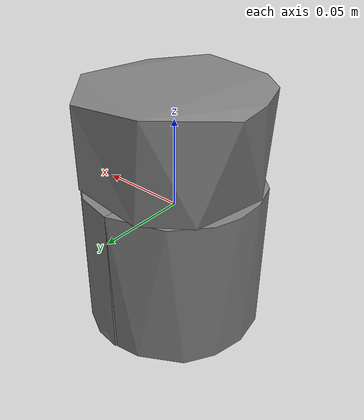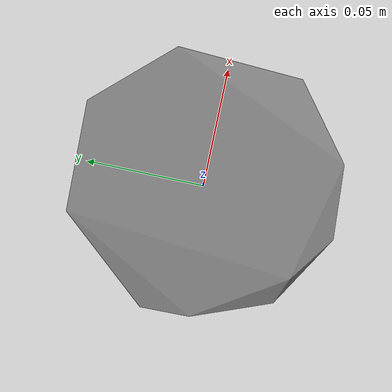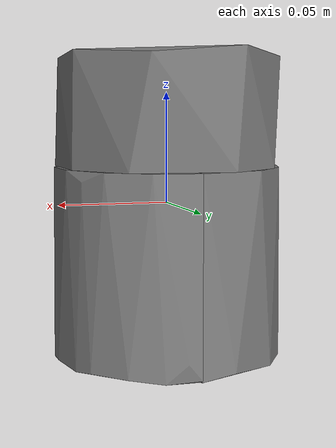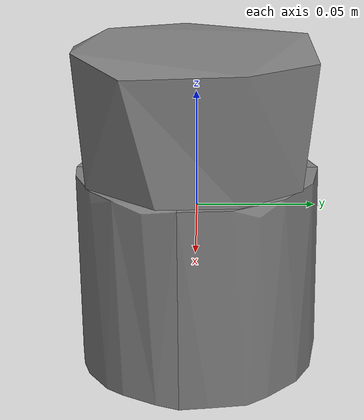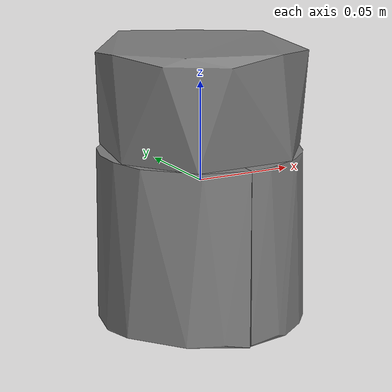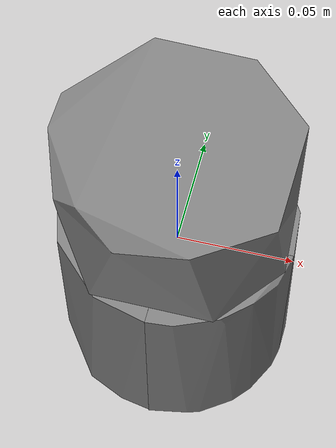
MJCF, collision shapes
<mujoco model="master_chef_can">
  <compiler angle="radian" />

  <asset>
    <mesh name="master_chef_can_visual_mesh" file="master_chef_can/textured.obj" />
    <mesh name="master_chef_can_collision_mesh_0" file="master_chef_can/textured_coacd_0.stl" />
    <mesh name="master_chef_can_collision_mesh_1" file="master_chef_can/textured_coacd_1.stl" />
    <mesh name="master_chef_can_collision_mesh_2" file="master_chef_can/textured_coacd_2.stl" />
    <mesh name="master_chef_can_collision_mesh_3" file="master_chef_can/textured_coacd_3.stl" />
    <texture name="master_chef_can_texture" type="2d" file="master_chef_can/texture_map.png" />
    <material name="master_chef_can_material" texture="master_chef_can_texture" />
  </asset>

  <worldbody>
    <body name="master_chef_can" pos="0 0 0" euler="0 0 0">
      <freejoint name="master_chef_can_joint" />
      <geom name="master_chef_can_visual_geom" type="mesh" mesh="master_chef_can_visual_mesh" material="master_chef_can_material" pos="0.01707072958296921 0.009762855837207728 -0.07058421978429177" euler="0 0 0" contype="0" conaffinity="0" group="0" />
      <geom name="master_chef_can_collision_geom_0" type="mesh" mesh="master_chef_can_collision_mesh_0" pos="0.01707072958296921 0.009762855837207728 -0.07058421978429177" euler="0 0 0" contype="1" conaffinity="1" group="3" />
      <geom name="master_chef_can_collision_geom_1" type="mesh" mesh="master_chef_can_collision_mesh_1" pos="0.01707072958296921 0.009762855837207728 -0.07058421978429177" euler="0 0 0" contype="1" conaffinity="1" group="3" />
      <geom name="master_chef_can_collision_geom_2" type="mesh" mesh="master_chef_can_collision_mesh_2" pos="0.01707072958296921 0.009762855837207728 -0.07058421978429177" euler="0 0 0" contype="1" conaffinity="1" group="3" />
      <geom name="master_chef_can_collision_geom_3" type="mesh" mesh="master_chef_can_collision_mesh_3" pos="0.01707072958296921 0.009762855837207728 -0.07058421978429177" euler="0 0 0" contype="1" conaffinity="1" group="3" />
      <inertial pos="0 0 0" euler="0 0 0" mass="0.414" diaginertia="0.001 0.001 0.001" />
    </body>
  </worldbody>
</mujoco>
